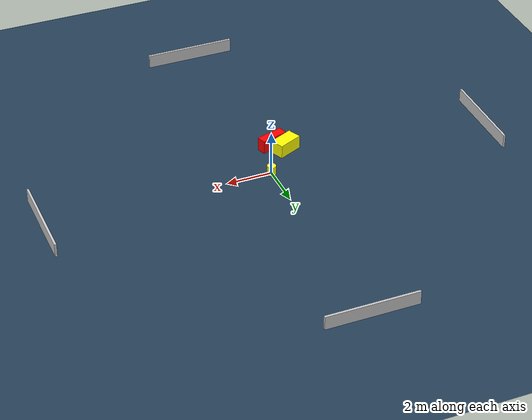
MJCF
<?xml version="1.0" ?>
<mujoco model="generated_environment">
  <option timestep="0.01" integrator="RK4" cone="elliptic"/>
  <default>
    <geom density="1"/>
  </default>
  <asset>
    <texture builtin="gradient" height="3072" name="skybox" rgb1="0.3 0.5 0.7" rgb2="0 0 0" type="skybox" width="512"/>
    <texture builtin="checker" height="300" name="groundplane" rgb1="0.2 0.3 0.4" rgb2="0.1 0.2 0.3" type="2d" width="300"/>
    <material name="groundplane" reflectance="0.2" texrepeat="5 5" texture="groundplane"/>
  </asset>
  <worldbody>
    <light dir="0 0 -1" directional="true" pos="0 0 1.5"/>
    <geom condim="3" friction="0.5 0.005 0.001" material="groundplane" name="floor" pos="0 0 0" size="0 0 0.05" type="plane"/>
    <body name="walls">
      <geom name="wall_1" condim="4" pos="-10.0 0.0 0.3" rgba="0.800000011920929 0.800000011920929 0.800000011920929 1.0" size="0.05 2.0 0.3" type="box"/>
      <geom name="wall_2" condim="4" pos="10.0 0.0 0.3" rgba="0.800000011920929 0.800000011920929 0.800000011920929 1.0" size="0.05 2.0 0.3" type="box"/>
      <geom name="wall_3" condim="4" pos="0.0 -10.0 0.3" rgba="0.800000011920929 0.800000011920929 0.800000011920929 1.0" size="2.0 0.05 0.3" type="box"/>
      <geom name="wall_4" condim="4" pos="0.0 10.0 0.3" rgba="0.800000011920929 0.800000011920929 0.800000011920929 1.0" size="2.0 0.05 0.3" type="box"/>
    </body>
    <body name="robot">
      <joint name="joint_x" type="slide" pos="0 0 0" axis="1 0 0"/>
      <joint name="joint_y" type="slide" pos="0 0 0" axis="0 1 0"/>
      <geom name="robot" type="cylinder" pos="0.0 0.0 0.2" size="0.2 0.2 0.0" mass="5.0" friction="1.0 0.005 0.0001" condim="4" rgba="1.0 1.0 0.0 1.0"/>
    </body>
    <body name="obstacle_1_movable">
      <geom name="obstacle_1_movable" condim="4" pos="-1.2116262394308441 -1.3721798749607883 0.3" euler="0 0 204.26142184282318" friction="0.0 0.005 0.001" rgba="1.0 1.0 0.0 1.0" size="0.5572211949299601 0.3076701624016797 0.3" type="box" mass="0.1"/>
      <joint type="free"/>
    </body>
    <body name="obstacle_2_static">
      <geom name="obstacle_2_static" condim="4" pos="-0.776697214002373 -1.842802546613917 0.3" euler="0 0 17.117584404795224" friction="0.0 0.005 0.001" rgba="1.0 0.0 0.0 1.0" size="0.6087760032742549 0.20898522121814425 0.3" type="box"/>
    </body>
  </worldbody>
  <actuator>
    <motor name="actuator_x" joint="joint_x" gear="1" ctrlrange="-1 1"/>
    <motor name="actuator_y" joint="joint_y" gear="1" ctrlrange="-1 1"/>
  </actuator>
</mujoco>
